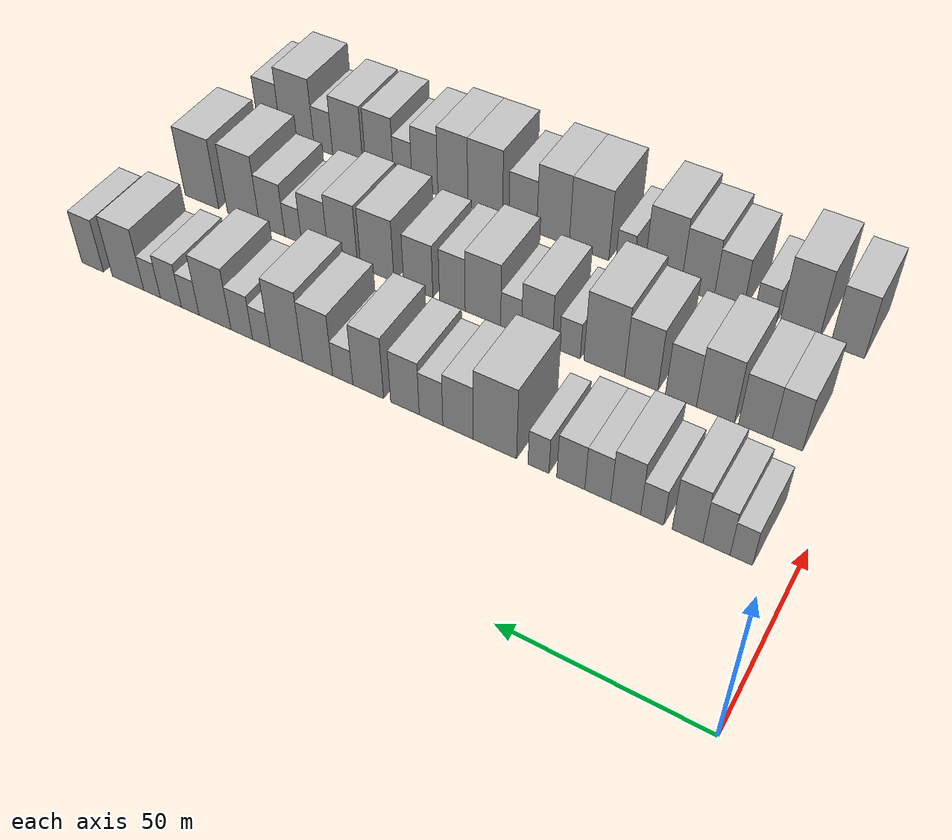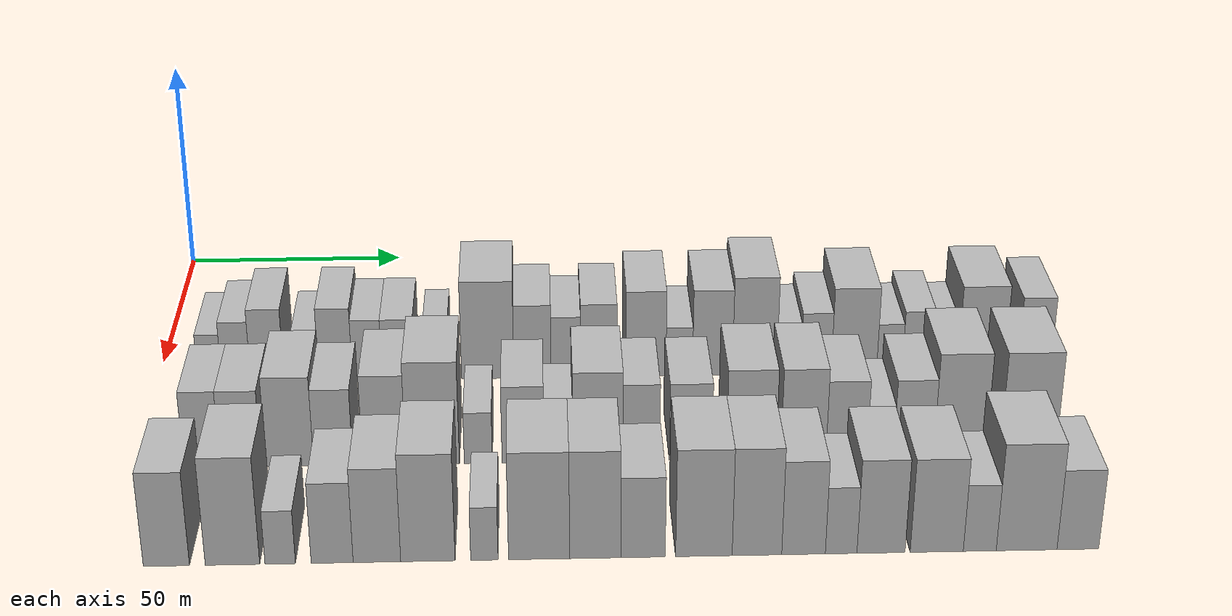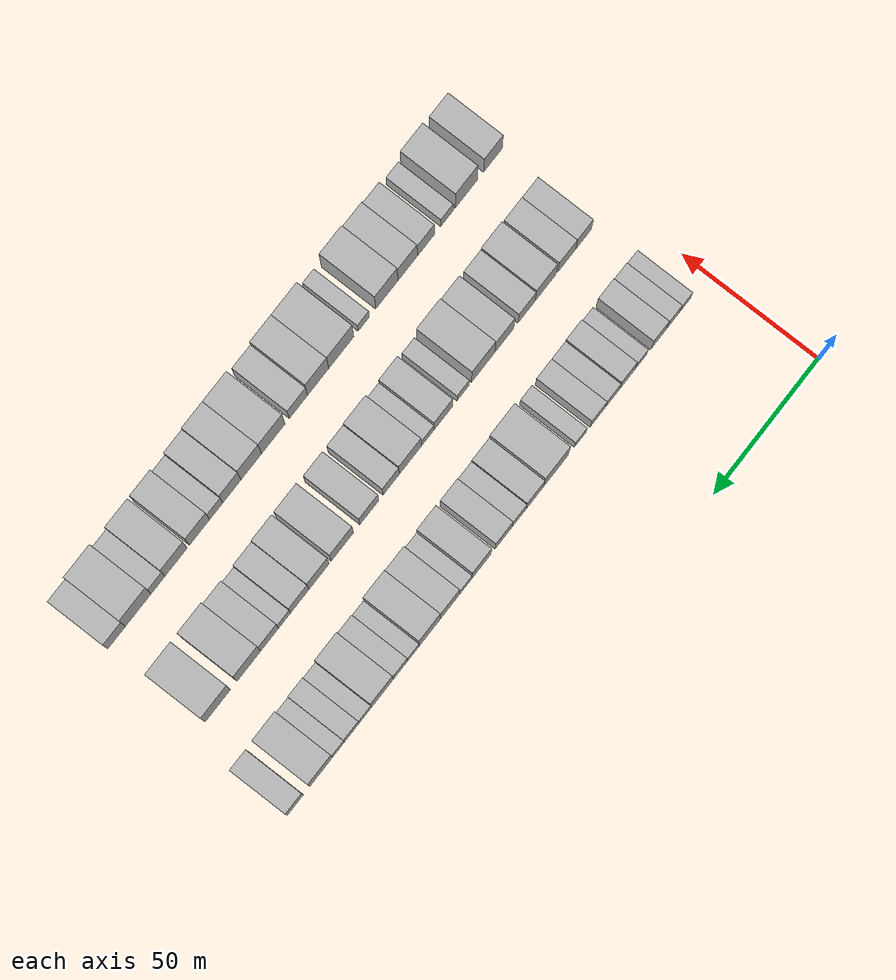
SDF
<sdf version="1.6">
 <world name="default">
  <model name="building_36">
   <static>1</static>
   <pose>50.0000 11.5242 0 0.000000 0.000000 0.000000</pose>
   <link name="link">
    <pose>0 0 6.00 0 0 0</pose>
    <collision name="collision"><geometry><box><size>20.0000 5.2024 12.0000</size></box></geometry></collision>
    <visual name="visual">
     <cast_shadows>0</cast_shadows>
     <geometry><box><size>20.0000 5.2024 12.0000</size></box></geometry>
     <material>
      <script>
       <uri>model://HANNAS_wall/materials/scripts</uri>
       <uri>model://HANNAS_wall/materials/textures</uri>
       <name>vrc/HANNAS_wall</name>
      </script>
     </material>
    </visual>
   </link>
  </model>
  <model name="building_37">
   <static>1</static>
   <pose>50.0000 17.3036 0 0.000000 0.000000 0.000000</pose>
   <link name="link">
    <pose>0 0 7.50 0 0 0</pose>
    <collision name="collision"><geometry><box><size>20.0000 6.3564 15.0000</size></box></geometry></collision>
    <visual name="visual">
     <cast_shadows>0</cast_shadows>
     <geometry><box><size>20.0000 6.3564 15.0000</size></box></geometry>
     <material>
      <script>
       <uri>model://HANNAS_wall/materials/scripts</uri>
       <uri>model://HANNAS_wall/materials/textures</uri>
       <name>vrc/HANNAS_wall</name>
      </script>
     </material>
    </visual>
   </link>
  </model>
  <model name="building_38">
   <static>1</static>
   <pose>50.0000 24.1411 0 0.000000 0.000000 0.000000</pose>
   <link name="link">
    <pose>0 0 9.00 0 0 0</pose>
    <collision name="collision"><geometry><box><size>20.0000 7.3187 18.0000</size></box></geometry></collision>
    <visual name="visual">
     <cast_shadows>0</cast_shadows>
     <geometry><box><size>20.0000 7.3187 18.0000</size></box></geometry>
     <material>
      <script>
       <uri>model://HANNAS_wall/materials/scripts</uri>
       <uri>model://HANNAS_wall/materials/textures</uri>
       <name>vrc/HANNAS_wall</name>
      </script>
     </material>
    </visual>
   </link>
  </model>
  <model name="building_39">
   <static>1</static>
   <pose>50.0000 32.6196 0 0.000000 0.000000 0.000000</pose>
   <link name="link">
    <pose>0 0 6.00 0 0 0</pose>
    <collision name="collision"><geometry><box><size>20.0000 5.6382 12.0000</size></box></geometry></collision>
    <visual name="visual">
     <cast_shadows>0</cast_shadows>
     <geometry><box><size>20.0000 5.6382 12.0000</size></box></geometry>
     <material>
      <script>
       <uri>model://HANNAS_wall/materials/scripts</uri>
       <uri>model://HANNAS_wall/materials/textures</uri>
       <name>vrc/HANNAS_wall</name>
      </script>
     </material>
    </visual>
   </link>
  </model>
  <model name="building_40">
   <static>1</static>
   <pose>50.0000 39.1190 0 0.000000 0.000000 0.000000</pose>
   <link name="link">
    <pose>0 0 9.00 0 0 0</pose>
    <collision name="collision"><geometry><box><size>20.0000 7.3605 18.0000</size></box></geometry></collision>
    <visual name="visual">
     <cast_shadows>0</cast_shadows>
     <geometry><box><size>20.0000 7.3605 18.0000</size></box></geometry>
     <material>
      <script>
       <uri>model://HANNAS_wall/materials/scripts</uri>
       <uri>model://HANNAS_wall/materials/textures</uri>
       <name>vrc/HANNAS_wall</name>
      </script>
     </material>
    </visual>
   </link>
  </model>
  <model name="building_41">
   <static>1</static>
   <pose>50.0000 46.0390 0 0.000000 0.000000 0.000000</pose>
   <link name="link">
    <pose>0 0 7.50 0 0 0</pose>
    <collision name="collision"><geometry><box><size>20.0000 6.4795 15.0000</size></box></geometry></collision>
    <visual name="visual">
     <cast_shadows>0</cast_shadows>
     <geometry><box><size>20.0000 6.4795 15.0000</size></box></geometry>
     <material>
      <script>
       <uri>model://HANNAS_wall/materials/scripts</uri>
       <uri>model://HANNAS_wall/materials/textures</uri>
       <name>vrc/HANNAS_wall</name>
      </script>
     </material>
    </visual>
   </link>
  </model>
  <model name="building_42">
   <static>1</static>
   <pose>50.0000 52.8485 0 0.000000 0.000000 0.000000</pose>
   <link name="link">
    <pose>0 0 7.50 0 0 0</pose>
    <collision name="collision"><geometry><box><size>20.0000 7.1395 15.0000</size></box></geometry></collision>
    <visual name="visual">
     <cast_shadows>0</cast_shadows>
     <geometry><box><size>20.0000 7.1395 15.0000</size></box></geometry>
     <material>
      <script>
       <uri>model://HANNAS_wall/materials/scripts</uri>
       <uri>model://HANNAS_wall/materials/textures</uri>
       <name>vrc/HANNAS_wall</name>
      </script>
     </material>
    </visual>
   </link>
  </model>
  <model name="building_43">
   <static>1</static>
   <pose>50.0000 61.1249 0 0.000000 0.000000 0.000000</pose>
   <link name="link">
    <pose>0 0 6.00 0 0 0</pose>
    <collision name="collision"><geometry><box><size>20.0000 5.4133 12.0000</size></box></geometry></collision>
    <visual name="visual">
     <cast_shadows>0</cast_shadows>
     <geometry><box><size>20.0000 5.4133 12.0000</size></box></geometry>
     <material>
      <script>
       <uri>model://HANNAS_wall/materials/scripts</uri>
       <uri>model://HANNAS_wall/materials/textures</uri>
       <name>vrc/HANNAS_wall</name>
      </script>
     </material>
    </visual>
   </link>
  </model>
  <model name="building_44">
   <static>1</static>
   <pose>50.0000 72.6042 0 0.000000 0.000000 0.000000</pose>
   <link name="link">
    <pose>0 0 12.00 0 0 0</pose>
    <collision name="collision"><geometry><box><size>20.0000 11.5454 24.0000</size></box></geometry></collision>
    <visual name="visual">
     <cast_shadows>0</cast_shadows>
     <geometry><box><size>20.0000 11.5454 24.0000</size></box></geometry>
     <material>
      <script>
       <uri>model://HANNAS_wall/materials/scripts</uri>
       <uri>model://HANNAS_wall/materials/textures</uri>
       <name>vrc/HANNAS_wall</name>
      </script>
     </material>
    </visual>
   </link>
  </model>
  <model name="building_45">
   <static>1</static>
   <pose>50.0000 82.4788 0 0.000000 0.000000 0.000000</pose>
   <link name="link">
    <pose>0 0 9.00 0 0 0</pose>
    <collision name="collision"><geometry><box><size>20.0000 8.2037 18.0000</size></box></geometry></collision>
    <visual name="visual">
     <cast_shadows>0</cast_shadows>
     <geometry><box><size>20.0000 8.2037 18.0000</size></box></geometry>
     <material>
      <script>
       <uri>model://HANNAS_wall/materials/scripts</uri>
       <uri>model://HANNAS_wall/materials/textures</uri>
       <name>vrc/HANNAS_wall</name>
      </script>
     </material>
    </visual>
   </link>
  </model>
  <model name="building_46">
   <static>1</static>
   <pose>50.0000 89.8488 0 0.000000 0.000000 0.000000</pose>
   <link name="link">
    <pose>0 0 7.50 0 0 0</pose>
    <collision name="collision"><geometry><box><size>20.0000 6.5365 15.0000</size></box></geometry></collision>
    <visual name="visual">
     <cast_shadows>0</cast_shadows>
     <geometry><box><size>20.0000 6.5365 15.0000</size></box></geometry>
     <material>
      <script>
       <uri>model://HANNAS_wall/materials/scripts</uri>
       <uri>model://HANNAS_wall/materials/textures</uri>
       <name>vrc/HANNAS_wall</name>
      </script>
     </material>
    </visual>
   </link>
  </model>
  <model name="building_47">
   <static>1</static>
   <pose>50.0000 97.1232 0 0.000000 0.000000 0.000000</pose>
   <link name="link">
    <pose>0 0 9.00 0 0 0</pose>
    <collision name="collision"><geometry><box><size>20.0000 8.0123 18.0000</size></box></geometry></collision>
    <visual name="visual">
     <cast_shadows>0</cast_shadows>
     <geometry><box><size>20.0000 8.0123 18.0000</size></box></geometry>
     <material>
      <script>
       <uri>model://HANNAS_wall/materials/scripts</uri>
       <uri>model://HANNAS_wall/materials/textures</uri>
       <name>vrc/HANNAS_wall</name>
      </script>
     </material>
    </visual>
   </link>
  </model>
  <model name="building_48">
   <static>1</static>
   <pose>50.0000 107.5432 0 0.000000 0.000000 0.000000</pose>
   <link name="link">
    <pose>0 0 10.50 0 0 0</pose>
    <collision name="collision"><geometry><box><size>20.0000 8.8278 21.0000</size></box></geometry></collision>
    <visual name="visual">
     <cast_shadows>0</cast_shadows>
     <geometry><box><size>20.0000 8.8278 21.0000</size></box></geometry>
     <material>
      <script>
       <uri>model://HANNAS_wall/materials/scripts</uri>
       <uri>model://HANNAS_wall/materials/textures</uri>
       <name>vrc/HANNAS_wall</name>
      </script>
     </material>
    </visual>
   </link>
  </model>
  <model name="building_49">
   <static>1</static>
   <pose>50.0000 114.9018 0 0.000000 0.000000 0.000000</pose>
   <link name="link">
    <pose>0 0 6.00 0 0 0</pose>
    <collision name="collision"><geometry><box><size>20.0000 5.8894 12.0000</size></box></geometry></collision>
    <visual name="visual">
     <cast_shadows>0</cast_shadows>
     <geometry><box><size>20.0000 5.8894 12.0000</size></box></geometry>
     <material>
      <script>
       <uri>model://HANNAS_wall/materials/scripts</uri>
       <uri>model://HANNAS_wall/materials/textures</uri>
       <name>vrc/HANNAS_wall</name>
      </script>
     </material>
    </visual>
   </link>
  </model>
  <model name="building_50">
   <static>1</static>
   <pose>50.0000 122.2735 0 0.000000 0.000000 0.000000</pose>
   <link name="link">
    <pose>0 0 10.50 0 0 0</pose>
    <collision name="collision"><geometry><box><size>20.0000 8.8539 21.0000</size></box></geometry></collision>
    <visual name="visual">
     <cast_shadows>0</cast_shadows>
     <geometry><box><size>20.0000 8.8539 21.0000</size></box></geometry>
     <material>
      <script>
       <uri>model://HANNAS_wall/materials/scripts</uri>
       <uri>model://HANNAS_wall/materials/textures</uri>
       <name>vrc/HANNAS_wall</name>
      </script>
     </material>
    </visual>
   </link>
  </model>
  <model name="building_51">
   <static>1</static>
   <pose>50.0000 131.6182 0 0.000000 0.000000 0.000000</pose>
   <link name="link">
    <pose>0 0 12.00 0 0 0</pose>
    <collision name="collision"><geometry><box><size>20.0000 9.8357 24.0000</size></box></geometry></collision>
    <visual name="visual">
     <cast_shadows>0</cast_shadows>
     <geometry><box><size>20.0000 9.8357 24.0000</size></box></geometry>
     <material>
      <script>
       <uri>model://HANNAS_wall/materials/scripts</uri>
       <uri>model://HANNAS_wall/materials/textures</uri>
       <name>vrc/HANNAS_wall</name>
      </script>
     </material>
    </visual>
   </link>
  </model>
  <model name="building_52">
   <static>1</static>
   <pose>50.0000 139.2439 0 0.000000 0.000000 0.000000</pose>
   <link name="link">
    <pose>0 0 6.00 0 0 0</pose>
    <collision name="collision"><geometry><box><size>20.0000 5.4157 12.0000</size></box></geometry></collision>
    <visual name="visual">
     <cast_shadows>0</cast_shadows>
     <geometry><box><size>20.0000 5.4157 12.0000</size></box></geometry>
     <material>
      <script>
       <uri>model://HANNAS_wall/materials/scripts</uri>
       <uri>model://HANNAS_wall/materials/textures</uri>
       <name>vrc/HANNAS_wall</name>
      </script>
     </material>
    </visual>
   </link>
  </model>
  <model name="building_53">
   <static>1</static>
   <pose>50.0000 145.3080 0 0.000000 0.000000 0.000000</pose>
   <link name="link">
    <pose>0 0 7.50 0 0 0</pose>
    <collision name="collision"><geometry><box><size>20.0000 6.7124 15.0000</size></box></geometry></collision>
    <visual name="visual">
     <cast_shadows>0</cast_shadows>
     <geometry><box><size>20.0000 6.7124 15.0000</size></box></geometry>
     <material>
      <script>
       <uri>model://HANNAS_wall/materials/scripts</uri>
       <uri>model://HANNAS_wall/materials/textures</uri>
       <name>vrc/HANNAS_wall</name>
      </script>
     </material>
    </visual>
   </link>
  </model>
  <model name="building_54">
   <static>1</static>
   <pose>50.0000 153.7200 0 0.000000 0.000000 0.000000</pose>
   <link name="link">
    <pose>0 0 10.50 0 0 0</pose>
    <collision name="collision"><geometry><box><size>20.0000 10.1116 21.0000</size></box></geometry></collision>
    <visual name="visual">
     <cast_shadows>0</cast_shadows>
     <geometry><box><size>20.0000 10.1116 21.0000</size></box></geometry>
     <material>
      <script>
       <uri>model://HANNAS_wall/materials/scripts</uri>
       <uri>model://HANNAS_wall/materials/textures</uri>
       <name>vrc/HANNAS_wall</name>
      </script>
     </material>
    </visual>
   </link>
  </model>
  <model name="building_55">
   <static>1</static>
   <pose>50.0000 161.6311 0 0.000000 0.000000 0.000000</pose>
   <link name="link">
    <pose>0 0 6.00 0 0 0</pose>
    <collision name="collision"><geometry><box><size>20.0000 5.7107 12.0000</size></box></geometry></collision>
    <visual name="visual">
     <cast_shadows>0</cast_shadows>
     <geometry><box><size>20.0000 5.7107 12.0000</size></box></geometry>
     <material>
      <script>
       <uri>model://HANNAS_wall/materials/scripts</uri>
       <uri>model://HANNAS_wall/materials/textures</uri>
       <name>vrc/HANNAS_wall</name>
      </script>
     </material>
    </visual>
   </link>
  </model>
  <model name="building_56">
   <static>1</static>
   <pose>50.0000 167.8996 0 0.000000 0.000000 0.000000</pose>
   <link name="link">
    <pose>0 0 7.50 0 0 0</pose>
    <collision name="collision"><geometry><box><size>20.0000 6.8262 15.0000</size></box></geometry></collision>
    <visual name="visual">
     <cast_shadows>0</cast_shadows>
     <geometry><box><size>20.0000 6.8262 15.0000</size></box></geometry>
     <material>
      <script>
       <uri>model://HANNAS_wall/materials/scripts</uri>
       <uri>model://HANNAS_wall/materials/textures</uri>
       <name>vrc/HANNAS_wall</name>
      </script>
     </material>
    </visual>
   </link>
  </model>
  <model name="building_57">
   <static>1</static>
   <pose>50.0000 174.0683 0 0.000000 0.000000 0.000000</pose>
   <link name="link">
    <pose>0 0 6.00 0 0 0</pose>
    <collision name="collision"><geometry><box><size>20.0000 5.5111 12.0000</size></box></geometry></collision>
    <visual name="visual">
     <cast_shadows>0</cast_shadows>
     <geometry><box><size>20.0000 5.5111 12.0000</size></box></geometry>
     <material>
      <script>
       <uri>model://HANNAS_wall/materials/scripts</uri>
       <uri>model://HANNAS_wall/materials/textures</uri>
       <name>vrc/HANNAS_wall</name>
      </script>
     </material>
    </visual>
   </link>
  </model>
  <model name="building_58">
   <static>1</static>
   <pose>50.0000 182.0635 0 0.000000 0.000000 0.000000</pose>
   <link name="link">
    <pose>0 0 10.50 0 0 0</pose>
    <collision name="collision"><geometry><box><size>20.0000 10.4793 21.0000</size></box></geometry></collision>
    <visual name="visual">
     <cast_shadows>0</cast_shadows>
     <geometry><box><size>20.0000 10.4793 21.0000</size></box></geometry>
     <material>
      <script>
       <uri>model://HANNAS_wall/materials/scripts</uri>
       <uri>model://HANNAS_wall/materials/textures</uri>
       <name>vrc/HANNAS_wall</name>
      </script>
     </material>
    </visual>
   </link>
  </model>
  <model name="building_59">
   <static>1</static>
   <pose>50.0000 193.9950 0 0.000000 0.000000 0.000000</pose>
   <link name="link">
    <pose>0 0 9.00 0 0 0</pose>
    <collision name="collision"><geometry><box><size>20.0000 7.3838 18.0000</size></box></geometry></collision>
    <visual name="visual">
     <cast_shadows>0</cast_shadows>
     <geometry><box><size>20.0000 7.3838 18.0000</size></box></geometry>
     <material>
      <script>
       <uri>model://HANNAS_wall/materials/scripts</uri>
       <uri>model://HANNAS_wall/materials/textures</uri>
       <name>vrc/HANNAS_wall</name>
      </script>
     </material>
    </visual>
   </link>
  </model>
  <model name="building_125">
   <static>1</static>
   <pose>85.0000 14.3445 0 0.000000 0.000000 0.000000</pose>
   <link name="link">
    <pose>0 0 9.00 0 0 0</pose>
    <collision name="collision"><geometry><box><size>20.0000 7.4177 18.0000</size></box></geometry></collision>
    <visual name="visual">
     <cast_shadows>0</cast_shadows>
     <geometry><box><size>20.0000 7.4177 18.0000</size></box></geometry>
     <material>
      <script>
       <uri>model://HANNAS_wall/materials/scripts</uri>
       <uri>model://HANNAS_wall/materials/textures</uri>
       <name>vrc/HANNAS_wall</name>
      </script>
     </material>
    </visual>
   </link>
  </model>
  <model name="building_126">
   <static>1</static>
   <pose>85.0000 22.2819 0 0.000000 0.000000 0.000000</pose>
   <link name="link">
    <pose>0 0 9.00 0 0 0</pose>
    <collision name="collision"><geometry><box><size>20.0000 8.4571 18.0000</size></box></geometry></collision>
    <visual name="visual">
     <cast_shadows>0</cast_shadows>
     <geometry><box><size>20.0000 8.4571 18.0000</size></box></geometry>
     <material>
      <script>
       <uri>model://HANNAS_wall/materials/scripts</uri>
       <uri>model://HANNAS_wall/materials/textures</uri>
       <name>vrc/HANNAS_wall</name>
      </script>
     </material>
    </visual>
   </link>
  </model>
  <model name="building_127">
   <static>1</static>
   <pose>85.0000 32.3770 0 0.000000 0.000000 0.000000</pose>
   <link name="link">
    <pose>0 0 10.50 0 0 0</pose>
    <collision name="collision"><geometry><box><size>20.0000 9.7333 21.0000</size></box></geometry></collision>
    <visual name="visual">
     <cast_shadows>0</cast_shadows>
     <geometry><box><size>20.0000 9.7333 21.0000</size></box></geometry>
     <material>
      <script>
       <uri>model://HANNAS_wall/materials/scripts</uri>
       <uri>model://HANNAS_wall/materials/textures</uri>
       <name>vrc/HANNAS_wall</name>
      </script>
     </material>
    </visual>
   </link>
  </model>
  <model name="building_128">
   <static>1</static>
   <pose>85.0000 41.2726 0 0.000000 0.000000 0.000000</pose>
   <link name="link">
    <pose>0 0 9.00 0 0 0</pose>
    <collision name="collision"><geometry><box><size>20.0000 8.0578 18.0000</size></box></geometry></collision>
    <visual name="visual">
     <cast_shadows>0</cast_shadows>
     <geometry><box><size>20.0000 8.0578 18.0000</size></box></geometry>
     <material>
      <script>
       <uri>model://HANNAS_wall/materials/scripts</uri>
       <uri>model://HANNAS_wall/materials/textures</uri>
       <name>vrc/HANNAS_wall</name>
      </script>
     </material>
    </visual>
   </link>
  </model>
  <model name="building_129">
   <static>1</static>
   <pose>85.0000 51.7404 0 0.000000 0.000000 0.000000</pose>
   <link name="link">
    <pose>0 0 10.50 0 0 0</pose>
    <collision name="collision"><geometry><box><size>20.0000 8.8778 21.0000</size></box></geometry></collision>
    <visual name="visual">
     <cast_shadows>0</cast_shadows>
     <geometry><box><size>20.0000 8.8778 21.0000</size></box></geometry>
     <material>
      <script>
       <uri>model://HANNAS_wall/materials/scripts</uri>
       <uri>model://HANNAS_wall/materials/textures</uri>
       <name>vrc/HANNAS_wall</name>
      </script>
     </material>
    </visual>
   </link>
  </model>
  <model name="building_130">
   <static>1</static>
   <pose>85.0000 61.7131 0 0.000000 0.000000 0.000000</pose>
   <link name="link">
    <pose>0 0 12.00 0 0 0</pose>
    <collision name="collision"><geometry><box><size>20.0000 11.0677 24.0000</size></box></geometry></collision>
    <visual name="visual">
     <cast_shadows>0</cast_shadows>
     <geometry><box><size>20.0000 11.0677 24.0000</size></box></geometry>
     <material>
      <script>
       <uri>model://HANNAS_wall/materials/scripts</uri>
       <uri>model://HANNAS_wall/materials/textures</uri>
       <name>vrc/HANNAS_wall</name>
      </script>
     </material>
    </visual>
   </link>
  </model>
  <model name="building_131">
   <static>1</static>
   <pose>85.0000 71.1459 0 0.000000 0.000000 0.000000</pose>
   <link name="link">
    <pose>0 0 6.00 0 0 0</pose>
    <collision name="collision"><geometry><box><size>20.0000 5.7978 12.0000</size></box></geometry></collision>
    <visual name="visual">
     <cast_shadows>0</cast_shadows>
     <geometry><box><size>20.0000 5.7978 12.0000</size></box></geometry>
     <material>
      <script>
       <uri>model://HANNAS_wall/materials/scripts</uri>
       <uri>model://HANNAS_wall/materials/textures</uri>
       <name>vrc/HANNAS_wall</name>
      </script>
     </material>
    </visual>
   </link>
  </model>
  <model name="building_132">
   <static>1</static>
   <pose>85.0000 80.3867 0 0.000000 0.000000 0.000000</pose>
   <link name="link">
    <pose>0 0 9.00 0 0 0</pose>
    <collision name="collision"><geometry><box><size>20.0000 8.6838 18.0000</size></box></geometry></collision>
    <visual name="visual">
     <cast_shadows>0</cast_shadows>
     <geometry><box><size>20.0000 8.6838 18.0000</size></box></geometry>
     <material>
      <script>
       <uri>model://HANNAS_wall/materials/scripts</uri>
       <uri>model://HANNAS_wall/materials/textures</uri>
       <name>vrc/HANNAS_wall</name>
      </script>
     </material>
    </visual>
   </link>
  </model>
  <model name="building_133">
   <static>1</static>
   <pose>85.0000 87.7191 0 0.000000 0.000000 0.000000</pose>
   <link name="link">
    <pose>0 0 6.00 0 0 0</pose>
    <collision name="collision"><geometry><box><size>20.0000 5.9811 12.0000</size></box></geometry></collision>
    <visual name="visual">
     <cast_shadows>0</cast_shadows>
     <geometry><box><size>20.0000 5.9811 12.0000</size></box></geometry>
     <material>
      <script>
       <uri>model://HANNAS_wall/materials/scripts</uri>
       <uri>model://HANNAS_wall/materials/textures</uri>
       <name>vrc/HANNAS_wall</name>
      </script>
     </material>
    </visual>
   </link>
  </model>
  <model name="building_134">
   <static>1</static>
   <pose>85.0000 95.8671 0 0.000000 0.000000 0.000000</pose>
   <link name="link">
    <pose>0 0 10.50 0 0 0</pose>
    <collision name="collision"><geometry><box><size>20.0000 10.3149 21.0000</size></box></geometry></collision>
    <visual name="visual">
     <cast_shadows>0</cast_shadows>
     <geometry><box><size>20.0000 10.3149 21.0000</size></box></geometry>
     <material>
      <script>
       <uri>model://HANNAS_wall/materials/scripts</uri>
       <uri>model://HANNAS_wall/materials/textures</uri>
       <name>vrc/HANNAS_wall</name>
      </script>
     </material>
    </visual>
   </link>
  </model>
  <model name="building_135">
   <static>1</static>
   <pose>85.0000 104.8368 0 0.000000 0.000000 0.000000</pose>
   <link name="link">
    <pose>0 0 9.00 0 0 0</pose>
    <collision name="collision"><geometry><box><size>20.0000 7.6245 18.0000</size></box></geometry></collision>
    <visual name="visual">
     <cast_shadows>0</cast_shadows>
     <geometry><box><size>20.0000 7.6245 18.0000</size></box></geometry>
     <material>
      <script>
       <uri>model://HANNAS_wall/materials/scripts</uri>
       <uri>model://HANNAS_wall/materials/textures</uri>
       <name>vrc/HANNAS_wall</name>
      </script>
     </material>
    </visual>
   </link>
  </model>
  <model name="building_136">
   <static>1</static>
   <pose>85.0000 115.0629 0 0.000000 0.000000 0.000000</pose>
   <link name="link">
    <pose>0 0 9.00 0 0 0</pose>
    <collision name="collision"><geometry><box><size>20.0000 8.8278 18.0000</size></box></geometry></collision>
    <visual name="visual">
     <cast_shadows>0</cast_shadows>
     <geometry><box><size>20.0000 8.8278 18.0000</size></box></geometry>
     <material>
      <script>
       <uri>model://HANNAS_wall/materials/scripts</uri>
       <uri>model://HANNAS_wall/materials/textures</uri>
       <name>vrc/HANNAS_wall</name>
      </script>
     </material>
    </visual>
   </link>
  </model>
  <model name="building_137">
   <static>1</static>
   <pose>85.0000 127.6393 0 0.000000 0.000000 0.000000</pose>
   <link name="link">
    <pose>0 0 10.50 0 0 0</pose>
    <collision name="collision"><geometry><box><size>20.0000 10.3249 21.0000</size></box></geometry></collision>
    <visual name="visual">
     <cast_shadows>0</cast_shadows>
     <geometry><box><size>20.0000 10.3249 21.0000</size></box></geometry>
     <material>
      <script>
       <uri>model://HANNAS_wall/materials/scripts</uri>
       <uri>model://HANNAS_wall/materials/textures</uri>
       <name>vrc/HANNAS_wall</name>
      </script>
     </material>
    </visual>
   </link>
  </model>
  <model name="building_138">
   <static>1</static>
   <pose>85.0000 138.4946 0 0.000000 0.000000 0.000000</pose>
   <link name="link">
    <pose>0 0 10.50 0 0 0</pose>
    <collision name="collision"><geometry><box><size>20.0000 9.3857 21.0000</size></box></geometry></collision>
    <visual name="visual">
     <cast_shadows>0</cast_shadows>
     <geometry><box><size>20.0000 9.3857 21.0000</size></box></geometry>
     <material>
      <script>
       <uri>model://HANNAS_wall/materials/scripts</uri>
       <uri>model://HANNAS_wall/materials/textures</uri>
       <name>vrc/HANNAS_wall</name>
      </script>
     </material>
    </visual>
   </link>
  </model>
  <model name="building_139">
   <static>1</static>
   <pose>85.0000 147.4624 0 0.000000 0.000000 0.000000</pose>
   <link name="link">
    <pose>0 0 9.00 0 0 0</pose>
    <collision name="collision"><geometry><box><size>20.0000 8.5499 18.0000</size></box></geometry></collision>
    <visual name="visual">
     <cast_shadows>0</cast_shadows>
     <geometry><box><size>20.0000 8.5499 18.0000</size></box></geometry>
     <material>
      <script>
       <uri>model://HANNAS_wall/materials/scripts</uri>
       <uri>model://HANNAS_wall/materials/textures</uri>
       <name>vrc/HANNAS_wall</name>
      </script>
     </material>
    </visual>
   </link>
  </model>
  <model name="building_140">
   <static>1</static>
   <pose>85.0000 154.4914 0 0.000000 0.000000 0.000000</pose>
   <link name="link">
    <pose>0 0 6.00 0 0 0</pose>
    <collision name="collision"><geometry><box><size>20.0000 5.5082 12.0000</size></box></geometry></collision>
    <visual name="visual">
     <cast_shadows>0</cast_shadows>
     <geometry><box><size>20.0000 5.5082 12.0000</size></box></geometry>
     <material>
      <script>
       <uri>model://HANNAS_wall/materials/scripts</uri>
       <uri>model://HANNAS_wall/materials/textures</uri>
       <name>vrc/HANNAS_wall</name>
      </script>
     </material>
    </visual>
   </link>
  </model>
  <model name="building_141">
   <static>1</static>
   <pose>85.0000 161.4335 0 0.000000 0.000000 0.000000</pose>
   <link name="link">
    <pose>0 0 9.00 0 0 0</pose>
    <collision name="collision"><geometry><box><size>20.0000 8.3759 18.0000</size></box></geometry></collision>
    <visual name="visual">
     <cast_shadows>0</cast_shadows>
     <geometry><box><size>20.0000 8.3759 18.0000</size></box></geometry>
     <material>
      <script>
       <uri>model://HANNAS_wall/materials/scripts</uri>
       <uri>model://HANNAS_wall/materials/textures</uri>
       <name>vrc/HANNAS_wall</name>
      </script>
     </material>
    </visual>
   </link>
  </model>
  <model name="building_142">
   <static>1</static>
   <pose>85.0000 171.0765 0 0.000000 0.000000 0.000000</pose>
   <link name="link">
    <pose>0 0 12.00 0 0 0</pose>
    <collision name="collision"><geometry><box><size>20.0000 10.9102 24.0000</size></box></geometry></collision>
    <visual name="visual">
     <cast_shadows>0</cast_shadows>
     <geometry><box><size>20.0000 10.9102 24.0000</size></box></geometry>
     <material>
      <script>
       <uri>model://HANNAS_wall/materials/scripts</uri>
       <uri>model://HANNAS_wall/materials/textures</uri>
       <name>vrc/HANNAS_wall</name>
      </script>
     </material>
    </visual>
   </link>
  </model>
  <model name="building_143">
   <static>1</static>
   <pose>85.0000 185.3813 0 0.000000 0.000000 0.000000</pose>
   <link name="link">
    <pose>0 0 12.00 0 0 0</pose>
    <collision name="collision"><geometry><box><size>20.0000 11.6994 24.0000</size></box></geometry></collision>
    <visual name="visual">
     <cast_shadows>0</cast_shadows>
     <geometry><box><size>20.0000 11.6994 24.0000</size></box></geometry>
     <material>
      <script>
       <uri>model://HANNAS_wall/materials/scripts</uri>
       <uri>model://HANNAS_wall/materials/textures</uri>
       <name>vrc/HANNAS_wall</name>
      </script>
     </material>
    </visual>
   </link>
  </model>
  <model name="building_206">
   <static>1</static>
   <pose>120.0000 12.0405 0 0.000000 0.000000 0.000000</pose>
   <link name="link">
    <pose>0 0 10.50 0 0 0</pose>
    <collision name="collision"><geometry><box><size>20.0000 8.8135 21.0000</size></box></geometry></collision>
    <visual name="visual">
     <cast_shadows>0</cast_shadows>
     <geometry><box><size>20.0000 8.8135 21.0000</size></box></geometry>
     <material>
      <script>
       <uri>model://HANNAS_wall/materials/scripts</uri>
       <uri>model://HANNAS_wall/materials/textures</uri>
       <name>vrc/HANNAS_wall</name>
      </script>
     </material>
    </visual>
   </link>
  </model>
  <model name="building_207">
   <static>1</static>
   <pose>120.0000 24.6536 0 0.000000 0.000000 0.000000</pose>
   <link name="link">
    <pose>0 0 12.00 0 0 0</pose>
    <collision name="collision"><geometry><box><size>20.0000 10.4126 24.0000</size></box></geometry></collision>
    <visual name="visual">
     <cast_shadows>0</cast_shadows>
     <geometry><box><size>20.0000 10.4126 24.0000</size></box></geometry>
     <material>
      <script>
       <uri>model://HANNAS_wall/materials/scripts</uri>
       <uri>model://HANNAS_wall/materials/textures</uri>
       <name>vrc/HANNAS_wall</name>
      </script>
     </material>
    </visual>
   </link>
  </model>
  <model name="building_208">
   <static>1</static>
   <pose>120.0000 33.7791 0 0.000000 0.000000 0.000000</pose>
   <link name="link">
    <pose>0 0 6.00 0 0 0</pose>
    <collision name="collision"><geometry><box><size>20.0000 5.8384 12.0000</size></box></geometry></collision>
    <visual name="visual">
     <cast_shadows>0</cast_shadows>
     <geometry><box><size>20.0000 5.8384 12.0000</size></box></geometry>
     <material>
      <script>
       <uri>model://HANNAS_wall/materials/scripts</uri>
       <uri>model://HANNAS_wall/materials/textures</uri>
       <name>vrc/HANNAS_wall</name>
      </script>
     </material>
    </visual>
   </link>
  </model>
  <model name="building_209">
   <static>1</static>
   <pose>120.0000 43.7202 0 0.000000 0.000000 0.000000</pose>
   <link name="link">
    <pose>0 0 9.00 0 0 0</pose>
    <collision name="collision"><geometry><box><size>20.0000 8.0438 18.0000</size></box></geometry></collision>
    <visual name="visual">
     <cast_shadows>0</cast_shadows>
     <geometry><box><size>20.0000 8.0438 18.0000</size></box></geometry>
     <material>
      <script>
       <uri>model://HANNAS_wall/materials/scripts</uri>
       <uri>model://HANNAS_wall/materials/textures</uri>
       <name>vrc/HANNAS_wall</name>
      </script>
     </material>
    </visual>
   </link>
  </model>
  <model name="building_210">
   <static>1</static>
   <pose>120.0000 52.3017 0 0.000000 0.000000 0.000000</pose>
   <link name="link">
    <pose>0 0 10.50 0 0 0</pose>
    <collision name="collision"><geometry><box><size>20.0000 9.1191 21.0000</size></box></geometry></collision>
    <visual name="visual">
     <cast_shadows>0</cast_shadows>
     <geometry><box><size>20.0000 9.1191 21.0000</size></box></geometry>
     <material>
      <script>
       <uri>model://HANNAS_wall/materials/scripts</uri>
       <uri>model://HANNAS_wall/materials/textures</uri>
       <name>vrc/HANNAS_wall</name>
      </script>
     </material>
    </visual>
   </link>
  </model>
  <model name="building_211">
   <static>1</static>
   <pose>120.0000 62.0842 0 0.000000 0.000000 0.000000</pose>
   <link name="link">
    <pose>0 0 12.00 0 0 0</pose>
    <collision name="collision"><geometry><box><size>20.0000 10.4458 24.0000</size></box></geometry></collision>
    <visual name="visual">
     <cast_shadows>0</cast_shadows>
     <geometry><box><size>20.0000 10.4458 24.0000</size></box></geometry>
     <material>
      <script>
       <uri>model://HANNAS_wall/materials/scripts</uri>
       <uri>model://HANNAS_wall/materials/textures</uri>
       <name>vrc/HANNAS_wall</name>
      </script>
     </material>
    </visual>
   </link>
  </model>
  <model name="building_212">
   <static>1</static>
   <pose>120.0000 72.9438 0 0.000000 0.000000 0.000000</pose>
   <link name="link">
    <pose>0 0 6.00 0 0 0</pose>
    <collision name="collision"><geometry><box><size>20.0000 5.2735 12.0000</size></box></geometry></collision>
    <visual name="visual">
     <cast_shadows>0</cast_shadows>
     <geometry><box><size>20.0000 5.2735 12.0000</size></box></geometry>
     <material>
      <script>
       <uri>model://HANNAS_wall/materials/scripts</uri>
       <uri>model://HANNAS_wall/materials/textures</uri>
       <name>vrc/HANNAS_wall</name>
      </script>
     </material>
    </visual>
   </link>
  </model>
  <model name="building_213">
   <static>1</static>
   <pose>120.0000 83.4642 0 0.000000 0.000000 0.000000</pose>
   <link name="link">
    <pose>0 0 12.00 0 0 0</pose>
    <collision name="collision"><geometry><box><size>20.0000 11.7674 24.0000</size></box></geometry></collision>
    <visual name="visual">
     <cast_shadows>0</cast_shadows>
     <geometry><box><size>20.0000 11.7674 24.0000</size></box></geometry>
     <material>
      <script>
       <uri>model://HANNAS_wall/materials/scripts</uri>
       <uri>model://HANNAS_wall/materials/textures</uri>
       <name>vrc/HANNAS_wall</name>
      </script>
     </material>
    </visual>
   </link>
  </model>
  <model name="building_214">
   <static>1</static>
   <pose>120.0000 94.2714 0 0.000000 0.000000 0.000000</pose>
   <link name="link">
    <pose>0 0 12.00 0 0 0</pose>
    <collision name="collision"><geometry><box><size>20.0000 9.8469 24.0000</size></box></geometry></collision>
    <visual name="visual">
     <cast_shadows>0</cast_shadows>
     <geometry><box><size>20.0000 9.8469 24.0000</size></box></geometry>
     <material>
      <script>
       <uri>model://HANNAS_wall/materials/scripts</uri>
       <uri>model://HANNAS_wall/materials/textures</uri>
       <name>vrc/HANNAS_wall</name>
      </script>
     </material>
    </visual>
   </link>
  </model>
  <model name="building_215">
   <static>1</static>
   <pose>120.0000 103.4927 0 0.000000 0.000000 0.000000</pose>
   <link name="link">
    <pose>0 0 9.00 0 0 0</pose>
    <collision name="collision"><geometry><box><size>20.0000 8.5957 18.0000</size></box></geometry></collision>
    <visual name="visual">
     <cast_shadows>0</cast_shadows>
     <geometry><box><size>20.0000 8.5957 18.0000</size></box></geometry>
     <material>
      <script>
       <uri>model://HANNAS_wall/materials/scripts</uri>
       <uri>model://HANNAS_wall/materials/textures</uri>
       <name>vrc/HANNAS_wall</name>
      </script>
     </material>
    </visual>
   </link>
  </model>
  <model name="building_216">
   <static>1</static>
   <pose>120.0000 115.2581 0 0.000000 0.000000 0.000000</pose>
   <link name="link">
    <pose>0 0 12.00 0 0 0</pose>
    <collision name="collision"><geometry><box><size>20.0000 10.9352 24.0000</size></box></geometry></collision>
    <visual name="visual">
     <cast_shadows>0</cast_shadows>
     <geometry><box><size>20.0000 10.9352 24.0000</size></box></geometry>
     <material>
      <script>
       <uri>model://HANNAS_wall/materials/scripts</uri>
       <uri>model://HANNAS_wall/materials/textures</uri>
       <name>vrc/HANNAS_wall</name>
      </script>
     </material>
    </visual>
   </link>
  </model>
  <model name="building_217">
   <static>1</static>
   <pose>120.0000 125.5268 0 0.000000 0.000000 0.000000</pose>
   <link name="link">
    <pose>0 0 12.00 0 0 0</pose>
    <collision name="collision"><geometry><box><size>20.0000 9.6021 24.0000</size></box></geometry></collision>
    <visual name="visual">
     <cast_shadows>0</cast_shadows>
     <geometry><box><size>20.0000 9.6021 24.0000</size></box></geometry>
     <material>
      <script>
       <uri>model://HANNAS_wall/materials/scripts</uri>
       <uri>model://HANNAS_wall/materials/textures</uri>
       <name>vrc/HANNAS_wall</name>
      </script>
     </material>
    </visual>
   </link>
  </model>
  <model name="building_218">
   <static>1</static>
   <pose>120.0000 134.5560 0 0.000000 0.000000 0.000000</pose>
   <link name="link">
    <pose>0 0 10.50 0 0 0</pose>
    <collision name="collision"><geometry><box><size>20.0000 8.4563 21.0000</size></box></geometry></collision>
    <visual name="visual">
     <cast_shadows>0</cast_shadows>
     <geometry><box><size>20.0000 8.4563 21.0000</size></box></geometry>
     <material>
      <script>
       <uri>model://HANNAS_wall/materials/scripts</uri>
       <uri>model://HANNAS_wall/materials/textures</uri>
       <name>vrc/HANNAS_wall</name>
      </script>
     </material>
    </visual>
   </link>
  </model>
  <model name="building_219">
   <static>1</static>
   <pose>120.0000 141.8514 0 0.000000 0.000000 0.000000</pose>
   <link name="link">
    <pose>0 0 7.50 0 0 0</pose>
    <collision name="collision"><geometry><box><size>20.0000 6.1344 15.0000</size></box></geometry></collision>
    <visual name="visual">
     <cast_shadows>0</cast_shadows>
     <geometry><box><size>20.0000 6.1344 15.0000</size></box></geometry>
     <material>
      <script>
       <uri>model://HANNAS_wall/materials/scripts</uri>
       <uri>model://HANNAS_wall/materials/textures</uri>
       <name>vrc/HANNAS_wall</name>
      </script>
     </material>
    </visual>
   </link>
  </model>
  <model name="building_220">
   <static>1</static>
   <pose>120.0000 149.5937 0 0.000000 0.000000 0.000000</pose>
   <link name="link">
    <pose>0 0 10.50 0 0 0</pose>
    <collision name="collision"><geometry><box><size>20.0000 9.3503 21.0000</size></box></geometry></collision>
    <visual name="visual">
     <cast_shadows>0</cast_shadows>
     <geometry><box><size>20.0000 9.3503 21.0000</size></box></geometry>
     <material>
      <script>
       <uri>model://HANNAS_wall/materials/scripts</uri>
       <uri>model://HANNAS_wall/materials/textures</uri>
       <name>vrc/HANNAS_wall</name>
      </script>
     </material>
    </visual>
   </link>
  </model>
  <model name="building_221">
   <static>1</static>
   <pose>120.0000 160.4302 0 0.000000 0.000000 0.000000</pose>
   <link name="link">
    <pose>0 0 10.50 0 0 0</pose>
    <collision name="collision"><geometry><box><size>20.0000 10.3227 21.0000</size></box></geometry></collision>
    <visual name="visual">
     <cast_shadows>0</cast_shadows>
     <geometry><box><size>20.0000 10.3227 21.0000</size></box></geometry>
     <material>
      <script>
       <uri>model://HANNAS_wall/materials/scripts</uri>
       <uri>model://HANNAS_wall/materials/textures</uri>
       <name>vrc/HANNAS_wall</name>
      </script>
     </material>
    </visual>
   </link>
  </model>
  <model name="building_222">
   <static>1</static>
   <pose>120.0000 168.8046 0 0.000000 0.000000 0.000000</pose>
   <link name="link">
    <pose>0 0 7.50 0 0 0</pose>
    <collision name="collision"><geometry><box><size>20.0000 6.4261 15.0000</size></box></geometry></collision>
    <visual name="visual">
     <cast_shadows>0</cast_shadows>
     <geometry><box><size>20.0000 6.4261 15.0000</size></box></geometry>
     <material>
      <script>
       <uri>model://HANNAS_wall/materials/scripts</uri>
       <uri>model://HANNAS_wall/materials/textures</uri>
       <name>vrc/HANNAS_wall</name>
      </script>
     </material>
    </visual>
   </link>
  </model>
  <model name="building_223">
   <static>1</static>
   <pose>120.0000 177.9425 0 0.000000 0.000000 0.000000</pose>
   <link name="link">
    <pose>0 0 12.00 0 0 0</pose>
    <collision name="collision"><geometry><box><size>20.0000 11.8497 24.0000</size></box></geometry></collision>
    <visual name="visual">
     <cast_shadows>0</cast_shadows>
     <geometry><box><size>20.0000 11.8497 24.0000</size></box></geometry>
     <material>
      <script>
       <uri>model://HANNAS_wall/materials/scripts</uri>
       <uri>model://HANNAS_wall/materials/textures</uri>
       <name>vrc/HANNAS_wall</name>
      </script>
     </material>
    </visual>
   </link>
  </model>
  <model name="building_224">
   <static>1</static>
   <pose>120.0000 187.9455 0 0.000000 0.000000 0.000000</pose>
   <link name="link">
    <pose>0 0 9.00 0 0 0</pose>
    <collision name="collision"><geometry><box><size>20.0000 8.1562 18.0000</size></box></geometry></collision>
    <visual name="visual">
     <cast_shadows>0</cast_shadows>
     <geometry><box><size>20.0000 8.1562 18.0000</size></box></geometry>
     <material>
      <script>
       <uri>model://HANNAS_wall/materials/scripts</uri>
       <uri>model://HANNAS_wall/materials/textures</uri>
       <name>vrc/HANNAS_wall</name>
      </script>
     </material>
    </visual>
   </link>
  </model>
 </world>
</sdf>
